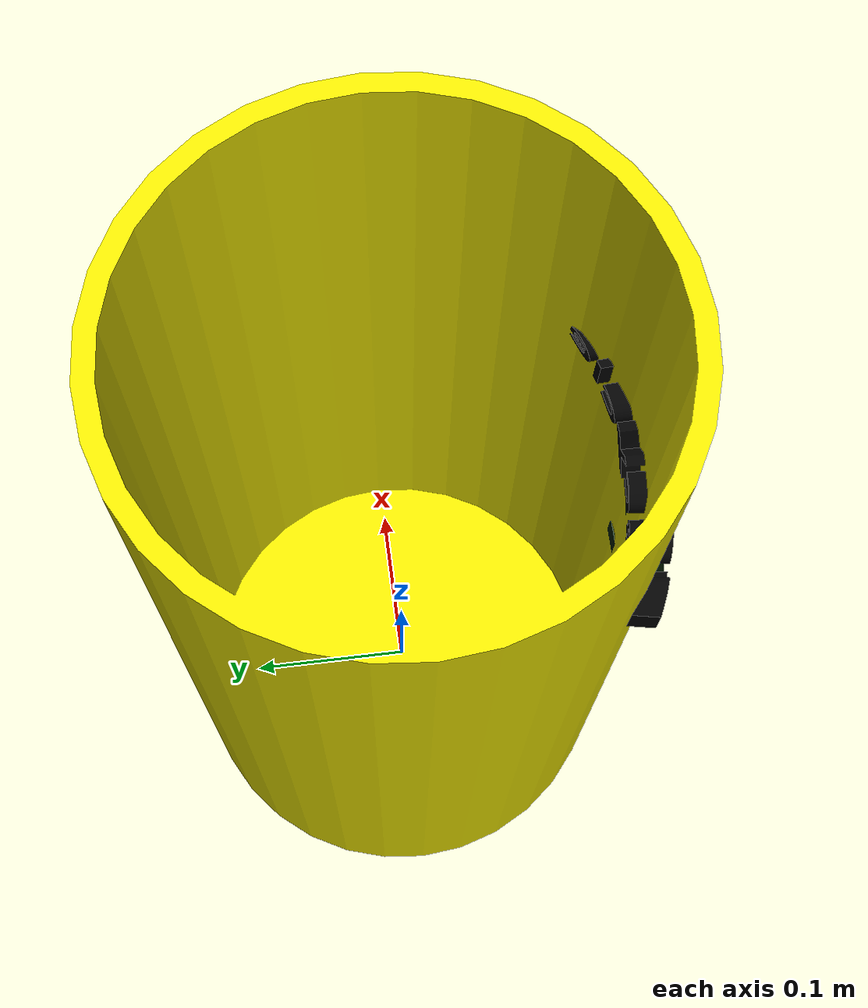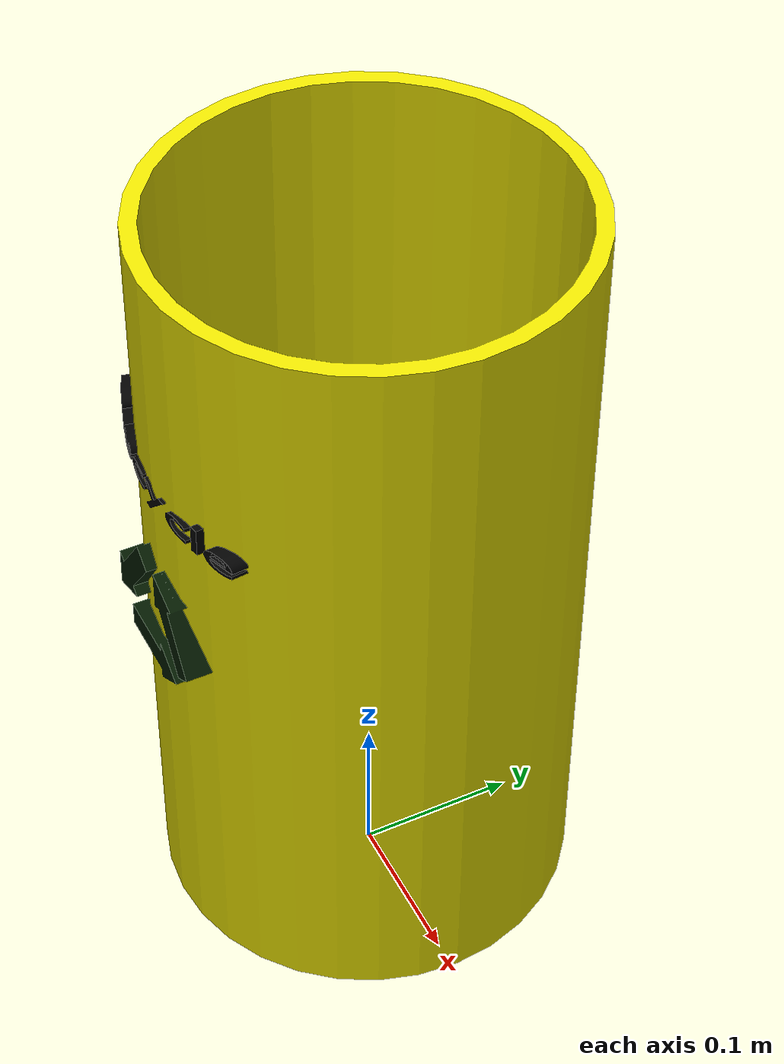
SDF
<?xml version="1.0" ?>
<sdf version="1.5">
  <model name="Dustbin_Black_Cylinder">
    <link name="link">
      <inertial>
        <pose>0 0 0.06 0 0 0</pose>
        <mass>0.05</mass>
        <inertia>
          <ixx>-1.000000</ixx>
          <ixy>0</ixy>
          <ixz>0</ixz>
          <iyy>-1</iyy>
          <iyz>-0.001760</iyz>
          <izz>1</izz>
        </inertia>
      </inertial>
      <collision name="collision">
        <pose>-.01 0 0 0 0 0</pose>
        <geometry>
          <mesh>
            <uri>model://dustbins/dustbin.stl</uri>
            <scale>.001 .001 .001</scale>
          </mesh>
        </geometry>
        <surface>
         <friction>
            <ode>
              <mu>1.0</mu>
              <mu2>1.0</mu2>
            </ode>
          </friction>
          <contact>
            <ode>
              <kp>10000000.0</kp>
              <kd>1.0</kd>
              <min_depth>0.001</min_depth>
              <max_vel>0.1</max_vel>
            </ode>
          </contact>

        </surface>
      </collision>
      <visual name="visual">
        <pose>0 0 0 0 0 0</pose>
        <geometry>
          <mesh>
            <uri>model://dustbins/Dustbin_Black_Cylinder/meshes/bin.dae</uri>
          </mesh>
        </geometry>
      </visual>
    </link>
  </model>
</sdf>
